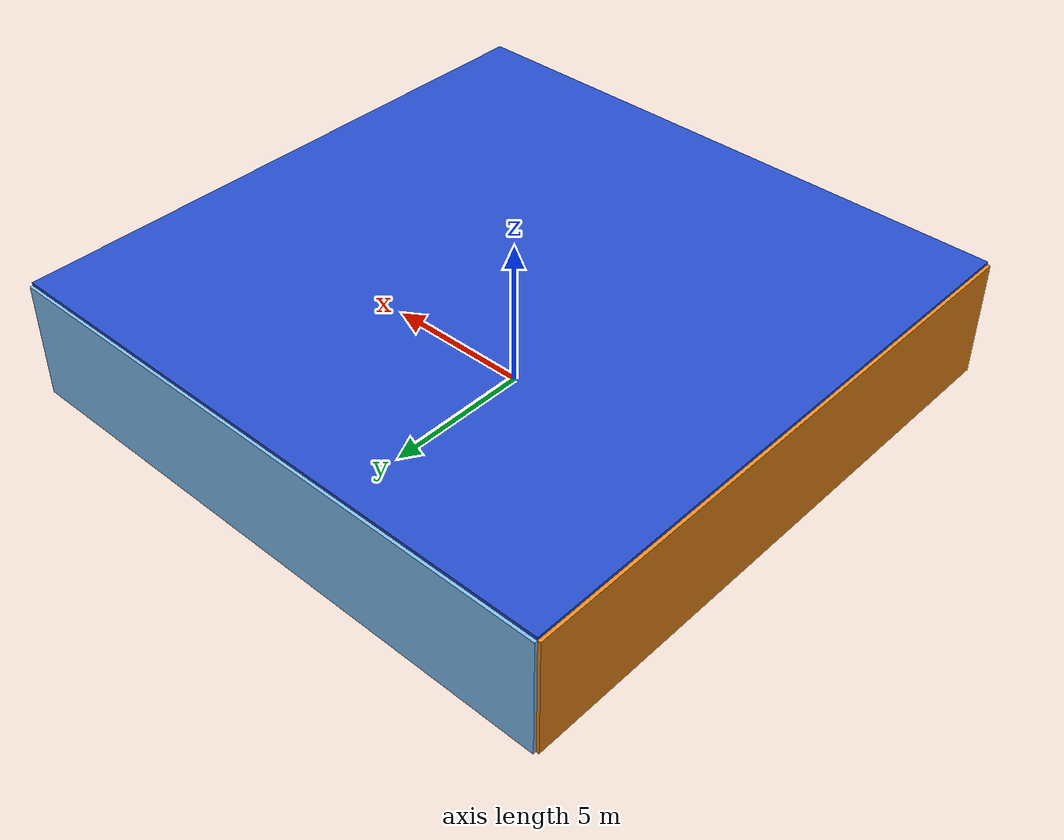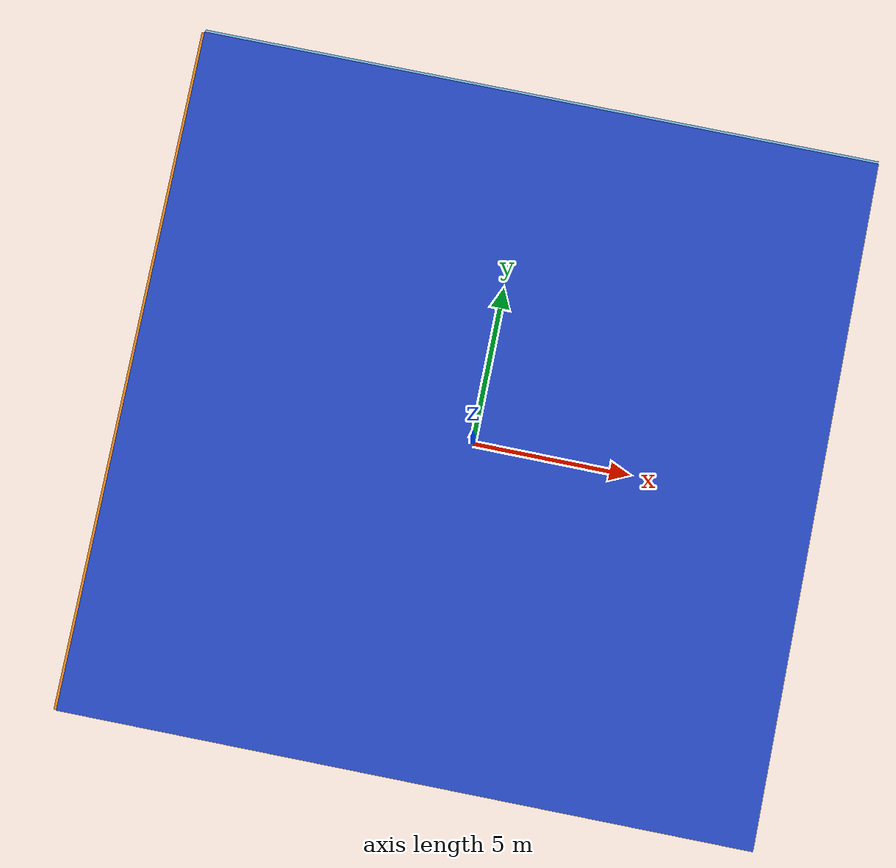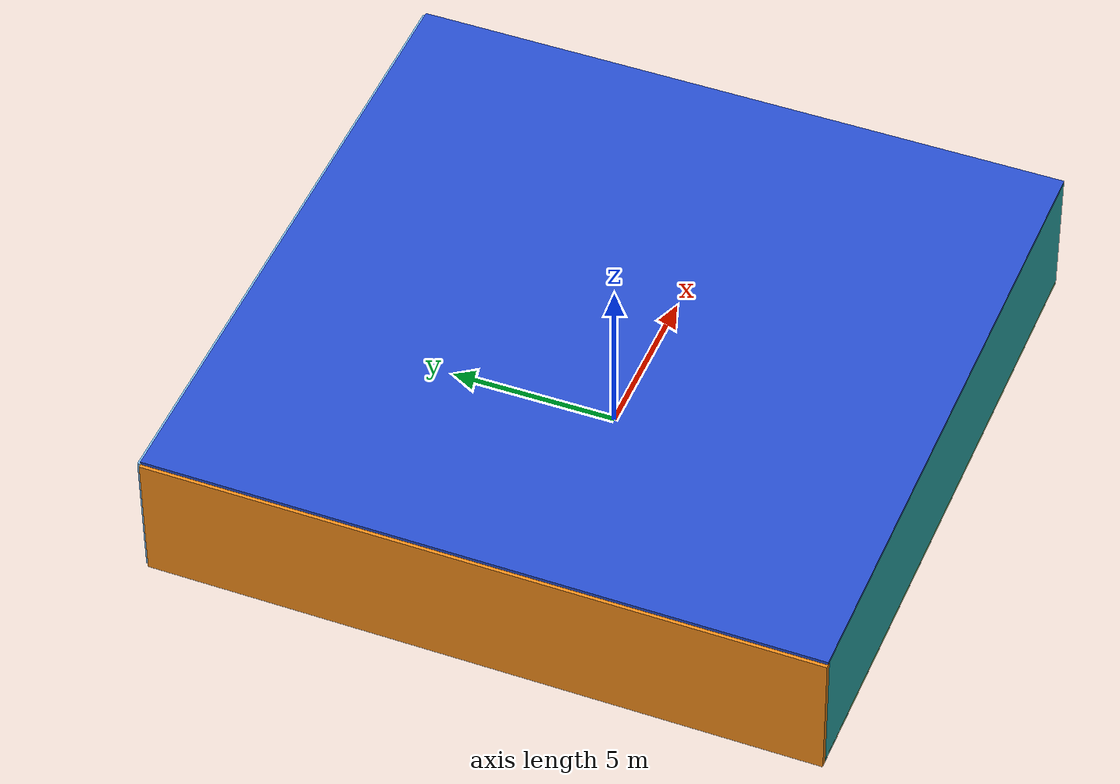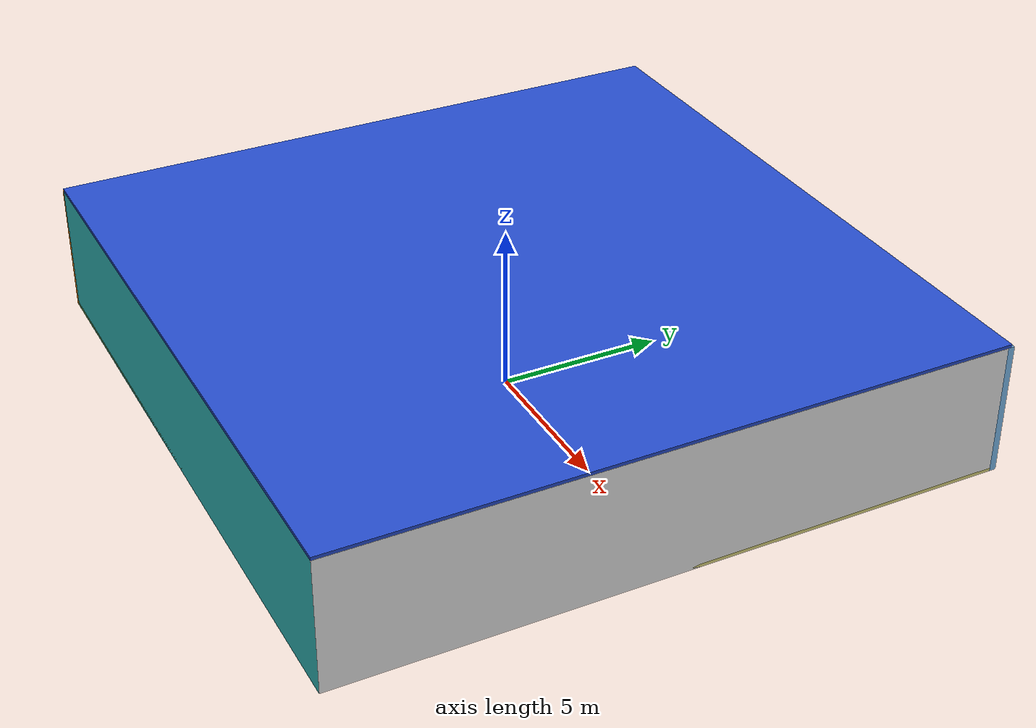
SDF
<sdf version="1.4">
 <world name="default">
  <physics type="ode">
   <max_step_size>0.001</max_step_size>
   <real_time_factor>1</real_time_factor>
   <real_time_update_rate>1000</real_time_update_rate>
   <gravity>0 0 -9.8</gravity>
  </physics>
  <scene><ambient>0.4 0.4 0.4 1</ambient><background>0.7 0.7 0.7 1</background><shadows>1</shadows></scene>
  <model name="Surrounding">
   <static>1</static>
   <link name="Ceiling">
    <collision name="Ceiling_Collision"><geometry><box><size>20 20 0.1</size></box></geometry></collision>
    <visual name="Ceiling_Visual">
     <geometry><box><size>20 20 0.1</size></box></geometry>
     <material>
      <script><uri>file://media/materials/scripts/gazebo.material</uri><name>Gazebo/BlueLaser</name></script>
     </material>
    </visual>
    <pose>0 0 4.05 0 0 0</pose>
   </link>
   <link name="Wall_South">
    <collision name="Wall_South_Collision">
     <geometry><box><size>20 0 4</size></box></geometry>
     <pose>0 0 2 0 -0 0</pose>
    </collision>
    <visual name="Wall_South_Visual">
     <pose>0 0 2 0 -0 0</pose>
     <geometry><box><size>20 0 4</size></box></geometry>
     <material>
      <script>
       <uri>file://media/materials/scripts/gazebo.material</uri>
       <name>Gazebo/TurquoiseGlowOutline</name>
      </script>
     </material>
    </visual>
    <velocity_decay><linear>0</linear><angular>0</angular></velocity_decay>
    <pose>0 -10 0 0 -0 0</pose>
   </link>
   <link name="Wall_East">
    <collision name="Wall_21_Collision">
     <geometry><box><size>20 0 4</size></box></geometry>
     <pose>0 0 2 0 -0 0</pose>
    </collision>
    <visual name="Wall_21_Visual">
     <pose>0 0 2 0 -0 0</pose>
     <geometry><box><size>20 0 4</size></box></geometry>
     <material>
      <script><uri>file://media/materials/scripts/gazebo.material</uri><name>Gazebo/WhiteGlow</name></script>
     </material>
    </visual>
    <velocity_decay><linear>0</linear><angular>0</angular></velocity_decay>
    <pose>10 0 0 0 -0 1.5708</pose>
   </link>
   <link name="Wall_North">
    <collision name="Wall_22_Collision">
     <geometry><box><size>20 0.2 4</size></box></geometry>
     <pose>0 0 2 0 -0 0</pose>
    </collision>
    <visual name="Wall_22_Visual">
     <pose>0 0 2 0 -0 0</pose>
     <geometry><box><size>20 0.2 4</size></box></geometry>
     <material>
      <script><uri>file://media/materials/scripts/gazebo.material</uri><name>Gazebo/SkyBlue</name></script>
     </material>
    </visual>
    <velocity_decay><linear>0</linear><angular>0</angular></velocity_decay>
    <pose>0 10 0 0 -0 0</pose>
   </link>
   <link name="Wall_West">
    <collision name="Wall_23_Collision">
     <geometry><box><size>20 0.2 4</size></box></geometry>
     <pose>0 0 2 0 -0 0</pose>
    </collision>
    <visual name="Wall_23_Visual">
     <pose>0 0 2 0 -0 0</pose>
     <geometry><box><size>20 0.2 4</size></box></geometry>
     <material>
      <script><uri>file://media/materials/scripts/gazebo.material</uri><name>Gazebo/Orange</name></script>
     </material>
    </visual>
    <velocity_decay><linear>0</linear><angular>0</angular></velocity_decay>
    <pose>-10 0 0 0 0 -1.5708</pose>
   </link>
   <link name="Ground_link">
    <collision name="collision">
     <pose>0 0 .05 0 -0 0</pose>
     <geometry><box><size>20 20 0.1</size></box></geometry>
    </collision>
    <visual name="visual">
     <pose>0 0 .05 0 -0 0</pose>
     <geometry><box><size>20 20 0.1</size></box></geometry>
     <material>
      <script>
       <uri>file://media/materials/scripts/gazebo.material</uri>
       <name>Gazebo/YellowTransparent</name>
      </script>
     </material>
    </visual>
   </link>
   <static>1</static>
  </model>
  <spherical_coordinates>
   <surface_model>EARTH_WGS84</surface_model>
   <latitude_deg>0</latitude_deg>
   <longitude_deg>0</longitude_deg>
   <elevation>0</elevation>
   <heading_deg>0</heading_deg>
  </spherical_coordinates>
  <light name="lightball_0" type="diffuse">
   <diffuse>0.8 0.8 0.8 1</diffuse>
   <specular>0.2 0.2 0.2 1</specular>
   <attenuation>
    <range>100</range>
    <constant>0.7</constant>
    <linear>0.01</linear>
    <quadratic>0.001</quadratic>
   </attenuation>
   <direction>-0.5 0.1 -0.9</direction>
   <pose>-9.00945618303 -0.463614211602 0.826927124815 0 0 0</pose>
  </light>
  <light name="lightball_1" type="diffuse">
   <diffuse>0.8 0.8 0.8 1</diffuse>
   <specular>0.2 0.2 0.2 1</specular>
   <attenuation>
    <range>100</range>
    <constant>0.7</constant>
    <linear>0.01</linear>
    <quadratic>0.001</quadratic>
   </attenuation>
   <direction>-0.5 0.1 -0.9</direction>
   <pose>1.43893172735 -8.74456612063 1.57430405811 0 0 0</pose>
  </light>
  <light name="lightball_2" type="diffuse">
   <diffuse>0.8 0.8 0.8 1</diffuse>
   <specular>0.2 0.2 0.2 1</specular>
   <attenuation>
    <range>100</range>
    <constant>0.7</constant>
    <linear>0.01</linear>
    <quadratic>0.001</quadratic>
   </attenuation>
   <direction>-0.5 0.1 -0.9</direction>
   <pose>-4.66341778472 7.21880846405 2.02456783799 0 0 0</pose>
  </light>
  <light name="lightball_3" type="diffuse">
   <diffuse>0.8 0.8 0.8 1</diffuse>
   <specular>0.2 0.2 0.2 1</specular>
   <attenuation>
    <range>100</range>
    <constant>0.7</constant>
    <linear>0.01</linear>
    <quadratic>0.001</quadratic>
   </attenuation>
   <direction>-0.5 0.1 -0.9</direction>
   <pose>2.22075490787 -4.22204074921 0.97322874273 0 0 0</pose>
  </light>
  <light name="lightball_4" type="diffuse">
   <diffuse>0.8 0.8 0.8 1</diffuse>
   <specular>0.2 0.2 0.2 1</specular>
   <attenuation>
    <range>100</range>
    <constant>0.7</constant>
    <linear>0.01</linear>
    <quadratic>0.001</quadratic>
   </attenuation>
   <direction>-0.5 0.1 -0.9</direction>
   <pose>2.79514748365 -7.1045934113 2.83331608683 0 0 0</pose>
  </light>
  <include><uri>model://cabinet</uri><pose>-6.78032460936 -8.12168814969 0 0 0 2.21462563432</pose></include>
  <include>
   <uri>model://construction_cone</uri>
   <pose>-7.91078863961 0.796112976854 0 0 0 2.00008472914</pose>
  </include>
  <include><uri>model://cabinet</uri><pose>7.4576278365 -7.90241591211 0 0 0 0.836796088929</pose></include>
  <include>
   <uri>model://textured_shapes</uri>
   <pose>7.458628241 -3.77084587529 0 0 0 2.1300463184</pose>
  </include>
 </world>
</sdf>

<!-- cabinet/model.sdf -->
<sdf version="1.5">
  <model name="cabinet">
    <static>true</static>
    <link name="cabinet_bottom_plate">
      <inertial>
        <pose>0 0 -1 0 0 0</pose>
        <inertia>
          <ixx>2.050000</ixx>
          <ixy>0</ixy>
          <ixz>0</ixz>
          <iyy>2.050000</iyy>
          <iyz>0</iyz>
          <izz>2.050000</izz>
        </inertia>
        <mass>25.000000</mass>
      </inertial>
      <collision name="cabinet_bottom_plate_geom">
        <pose>0 0 0.010000 0 0 0</pose>
        <geometry>
          <box>
            <size>0.450000 0.450000 0.020000</size>
          </box>
        </geometry>
      </collision>
      <visual name="cabinet_bottom_plate_geom_visual">
        <pose>0 0 0.010000 0 0 0</pose>
        <geometry>
          <box>
            <size>0.450000 0.450000 0.020000</size>
          </box>
        </geometry>
        <material>
          <script>
            <uri>model://media/materials/scripts/gazebo.material</uri>
            <name>Gazebo/Wood</name>
          </script>
        </material>
      </visual>
      <collision name="cabinet_bottom_plate_geom_cabinet_back_plate">
        <pose>0.235000 0 0.510000 0 0 0</pose>
        <geometry>
          <box>
            <size>0.020000 0.450000 1.020000</size>
          </box>
        </geometry>
      </collision>
      <visual name="cabinet_bottom_plate_geom_cabinet_back_plate_visual">
        <pose>0.235000 0 0.510000 0 0 0</pose>
        <geometry>
          <box>
            <size>0.020000 0.450000 1.020000</size>
          </box>
        </geometry>
        <material>
          <script>
            <uri>model://media/materials/scripts/gazebo.material</uri>
            <name>Gazebo/Wood</name>
          </script>
        </material>
      </visual>
      <collision name="cabinet_bottom_plate_geom_cabinet_left_plate">
        <pose>0 0.235000 0.510000 0 0 0</pose>
        <geometry>
          <box>
            <size>0.450000 0.020000 1.020000</size>
          </box>
        </geometry>
      </collision>
      <visual name="cabinet_bottom_plate_geom_cabinet_left_plate_visual">
        <pose>0 0.235000 0.510000 0 0 0</pose>
        <geometry>
          <box>
            <size>0.450000 0.020000 1.020000</size>
          </box>
        </geometry>
        <material>
          <script>
            <uri>model://media/materials/scripts/gazebo.material</uri>
            <name>Gazebo/Wood</name>
          </script>
        </material>
      </visual>
      <collision name="cabinet_bottom_plate_geom_cabinet_middle_plate">
        <pose>0 0 0.510000 0 0 0</pose>
        <geometry>
          <box>
            <size>0.450000 0.450000 0.020000</size>
          </box>
        </geometry>
      </collision>
      <visual name="cabinet_bottom_plate_geom_cabinet_middle_plate_visual">
        <pose>0 0 0.510000 0 0 0</pose>
        <geometry>
          <box>
            <size>0.450000 0.450000 0.020000</size>
          </box>
        </geometry>
        <material>
          <script>
            <uri>model://media/materials/scripts/gazebo.material</uri>
            <name>Gazebo/Wood</name>
          </script>
        </material>
      </visual>
      <collision name="cabinet_bottom_plate_geom_cabinet_right_plate">
        <pose>0 -0.235000 0.510000 0 0 0</pose>
        <geometry>
          <box>
            <size>0.450000 0.020000 1.020000</size>
          </box>
        </geometry>
      </collision>
      <visual name="cabinet_bottom_plate_geom_cabinet_right_plate_visual">
        <pose>0 -0.235000 0.510000 0 0 0</pose>
        <geometry>
          <box>
            <size>0.450000 0.020000 1.020000</size>
          </box>
        </geometry>
        <material>
          <script>
            <uri>model://media/materials/scripts/gazebo.material</uri>
            <name>Gazebo/Wood</name>
          </script>
        </material>
      </visual>
      <collision name="cabinet_bottom_plate_geom_cabinet_top_plate">
        <pose>0 0 1.010000 0 0 0</pose>
        <geometry>
          <box>
            <size>0.450000 0.450000 0.020000</size>
          </box>
        </geometry>
      </collision>
      <visual name="cabinet_bottom_plate_geom_cabinet_top_plate_visual">
        <pose>0 0 1.010000 0 0 0</pose>
        <geometry>
          <box>
            <size>0.450000 0.450000 0.020000</size>
          </box>
        </geometry>
        <material>
          <script>
            <uri>model://media/materials/scripts/gazebo.material</uri>
            <name>Gazebo/Wood</name>
          </script>
        </material>
      </visual>
    </link>
  </model>
</sdf>

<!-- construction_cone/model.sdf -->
<sdf version="1.5">
  <model name="Construction Cone">
    <link name="link">
      <collision name="collision">
        <geometry>
          <mesh>
            <scale>10 10 10</scale>
            <uri>file://isr-testbed/construction_cone/meshes/construction_cone.dae</uri>
          </mesh>
        </geometry>
      </collision>
      <visual name="visual">
        <geometry>
          <mesh>
            <scale>10 10 10</scale>
            <uri>file://isr-testbed/construction_cone/meshes/construction_cone.dae</uri>
          </mesh>
        </geometry>
      </visual>
    </link>
  </model>
</sdf>

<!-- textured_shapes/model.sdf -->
<sdf version="1.6">
  <model name="textured_shapes">
    <pose>0 0 0.5 0 0 0</pose>
    <link name="box">
      <pose>0 -1.5 0 0 0 0</pose>
      <collision name="collision">
        <geometry>
          <box>
            <size>1 1 1</size>
          </box>
        </geometry>
      </collision>
      <visual name="visual">
        <geometry>
          <box>
            <size>1 1 1</size>
          </box>
        </geometry>
        <material>
          <script>
            <uri>model://../model_source/models/textured_shapes/materials/scripts</uri>
            <uri>model://../model_source/models/textured_shapes/materials/textures</uri>
            <name>TexturedShape/Squares</name>
          </script>
        </material>
      </visual>
    </link>
    <link name="sphere">
      <collision name="collision">
        <geometry>
          <sphere>
            <radius>0.5</radius>
          </sphere>
        </geometry>
      </collision>
      <visual name="visual">
        <geometry>
          <sphere>
            <radius>0.5</radius>
          </sphere>
        </geometry>
        <material>
          <script>
            <uri>model://../model_source/models/textured_shapes/materials/scripts</uri>
            <uri>model://../model_source/models/textured_shapes/materials/textures</uri>
            <name>TexturedShape/Squares</name>
          </script>
        </material>
      </visual>
    </link>
    <link name="cylinder">
      <pose>0 1.5 0 0 0 0</pose>
      <collision name="collision">
        <geometry>
          <cylinder>
            <radius>0.5</radius>
            <length>1</length>
          </cylinder>
        </geometry>
      </collision>
      <visual name="visual">
        <geometry>
          <cylinder>
            <radius>0.5</radius>
            <length>1</length>
          </cylinder>
        </geometry>
        <material>
          <script>
            <uri>model://../model_source/models/textured_shapes/materials/scripts</uri>
            <uri>model://../model_source/models/textured_shapes/materials/textures</uri>
            <name>TexturedShape/Squares</name>
          </script>
        </material>
      </visual>
    </link>
  </model>
</sdf>
